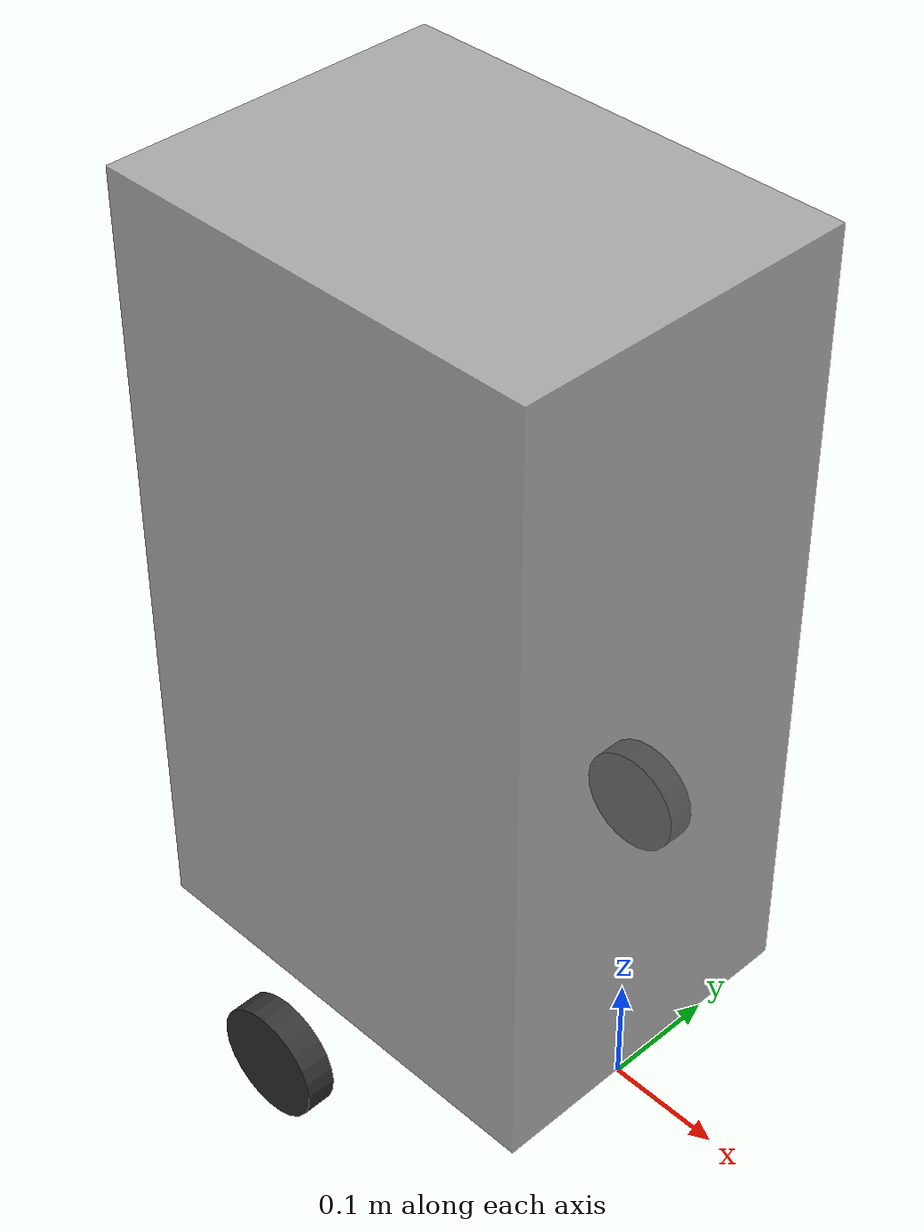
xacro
<?xml version="1.0"?>
<robot xmlns:xacro="http://www.ros.org/wiki/xacro" name="material_transfer_robot">
  <xacro:property name="body_length" value="0.40" />
  <xacro:property name="body_width" value="0.30" />
  <xacro:property name="body_height" value="0.70" />
  <xacro:property name="camera_height" value="0.746" />
  <xacro:property name="camera_forward" value="0.174" />
  <xacro:property name="camera_tilt" value="0.258" />
  <xacro:property name="wheel_radius" value="0.05" />
  <xacro:property name="wheel_width" value="0.026" />
  <xacro:property name="wheel_y_offset" value="0.063" />
  <!-- ZED CAMERA LINK — root of URDF tree, owned by ZED SDK TF broadcaster -->
  <!-- Declared here so robot_state_publisher knows it exists as a root -->
  <!-- BASE LINK — upright, at robot center, raised by wheel_radius -->
  <link name="zed_camera_link" />
  <joint name="camera_to_base_joint" type="fixed">
    <parent link="zed_camera_link" />
    <child link="base_link" />
    <origin xyz="${-camera_forward} 0 ${wheel_radius}" rpy="0 0 0" />
  </joint>
  <!-- Camera mount frame: true physical pose (height + tilt) -->
  <link name="camera_mount" />
  <joint name="zed_to_camera_mount" type="fixed">
    <parent link="base_link" />
    <child link="camera_mount" />
    <origin xyz="${camera_forward} 0 ${camera_height}" rpy="0 ${camera_tilt} 0" />
  </joint>
  <!-- Ground frame at floor level -->
  <link name="ground" />
  <joint name="base_to_ground" type="fixed">
    <parent link="base_link" />
    <child link="ground" />
    <origin xyz="0 0 ${-wheel_radius}" rpy="0 0 0" />
  </joint>
  <link name="base_link">
    <visual>
      <geometry>
        <box size="${body_length} ${body_width} ${body_height}" />
      </geometry>
      <!-- Body center is at half height above base_link origin (ground level) -->
      <origin xyz="0 0 ${body_height/2}" rpy="0 0 0" />
      <material name="grey">
        <color rgba="0.6 0.6 0.6 0.8" />
      </material>
    </visual>
    <collision>
      <geometry>
        <box size="${body_length} ${body_width} ${body_height}" />
      </geometry>
      <origin xyz="0 0 ${body_height/2}" rpy="0 0 0" />
    </collision>
  </link>
  <!-- LEFT WHEEL -->
  <joint name="left_wheel_joint" type="fixed">
    <parent link="base_link" />
    <child link="left_wheel" />
    <origin xyz="0 ${body_width/2 + wheel_y_offset} 0" rpy="${-pi/2} 0 0" />
  </joint>
  <link name="left_wheel">
    <visual>
      <geometry>
        <cylinder radius="${wheel_radius}" length="${wheel_width}" />
      </geometry>
      <material name="dark_grey">
        <color rgba="0.2 0.2 0.2 1.0" />
      </material>
    </visual>
    <collision>
      <geometry>
        <cylinder radius="${wheel_radius}" length="${wheel_width}" />
      </geometry>
    </collision>
  </link>
  <!-- RIGHT WHEEL -->
  <joint name="right_wheel_joint" type="fixed">
    <parent link="base_link" />
    <child link="right_wheel" />
    <origin xyz="0 ${-body_width/2 - wheel_y_offset} 0" rpy="${-pi/2} 0 0" />
  </joint>
  <link name="right_wheel">
    <visual>
      <geometry>
        <cylinder radius="${wheel_radius}" length="${wheel_width}" />
      </geometry>
      <material name="dark_grey">
        <color rgba="0.2 0.2 0.2 1.0" />
      </material>
    </visual>
    <collision>
      <geometry>
        <cylinder radius="${wheel_radius}" length="${wheel_width}" />
      </geometry>
    </collision>
  </link>
</robot>
